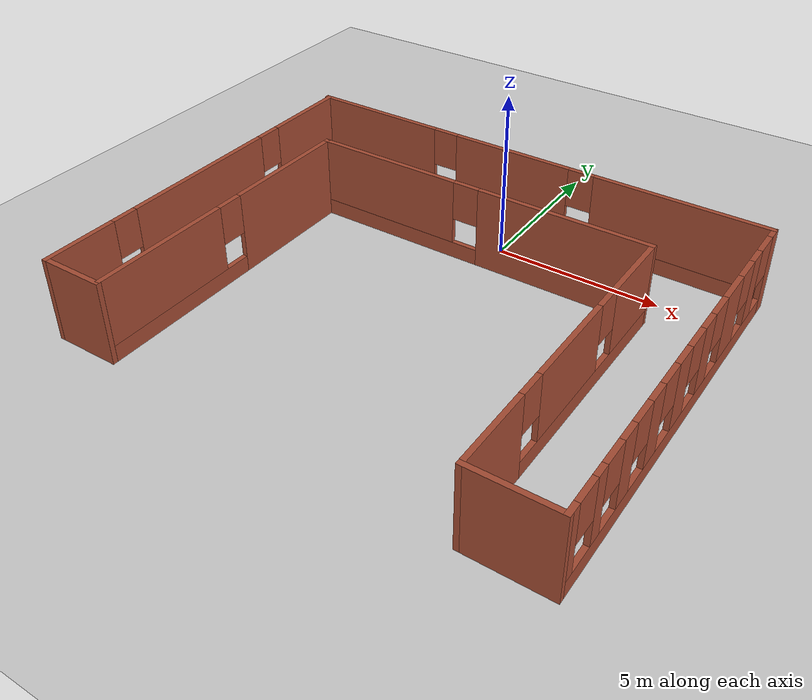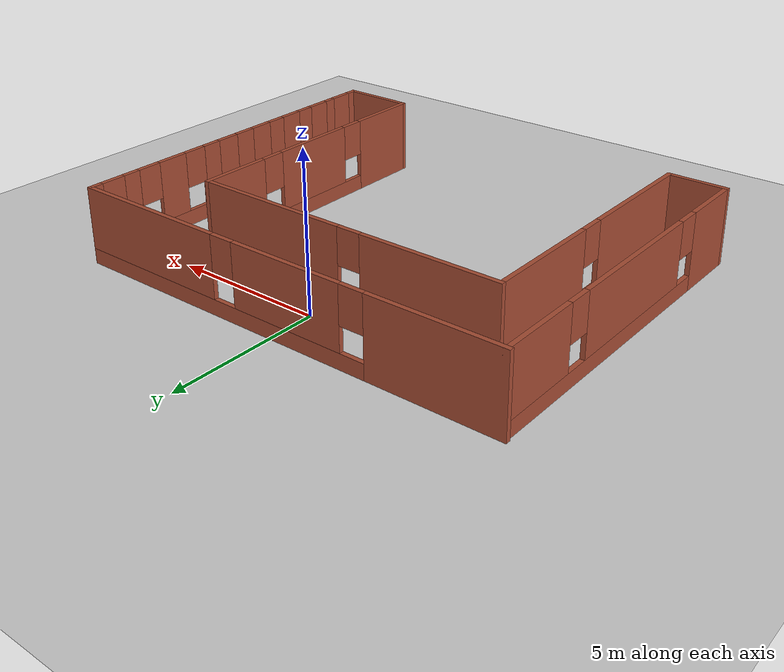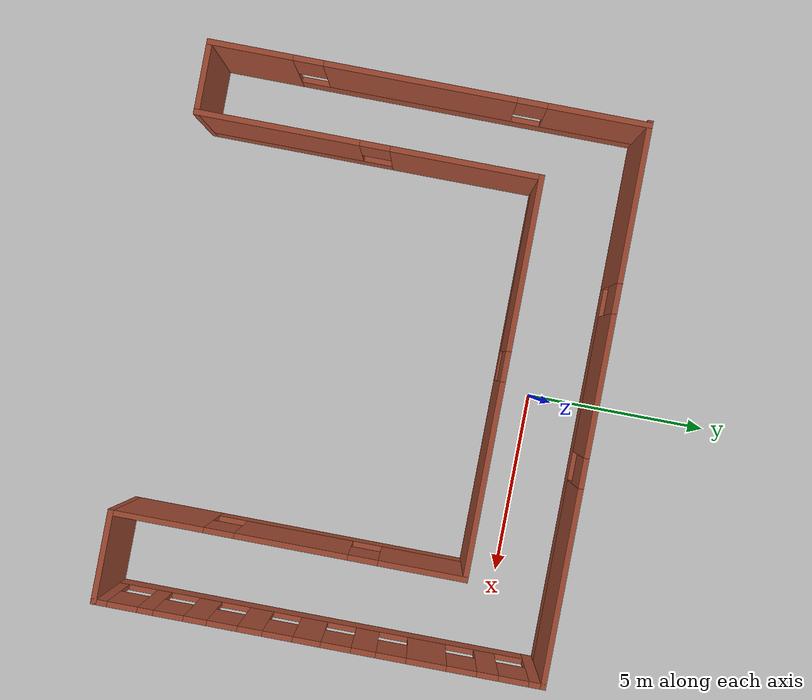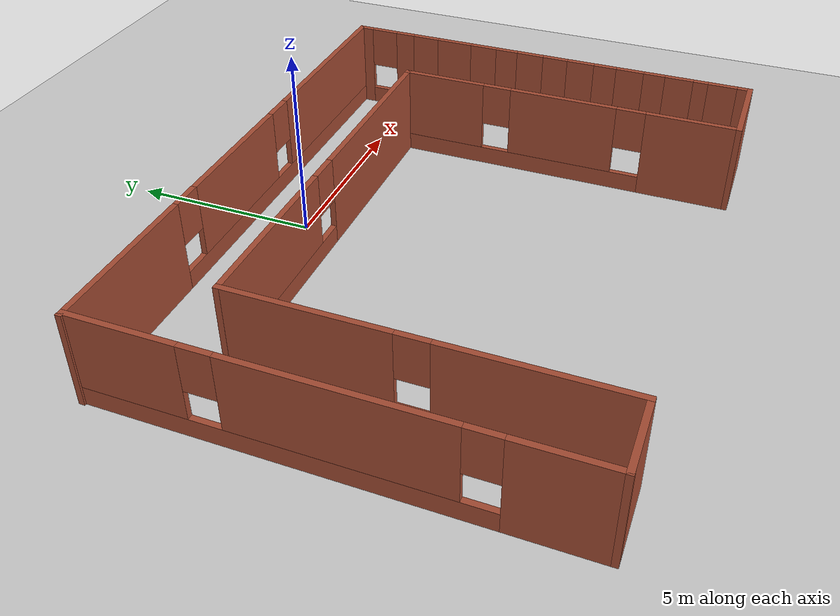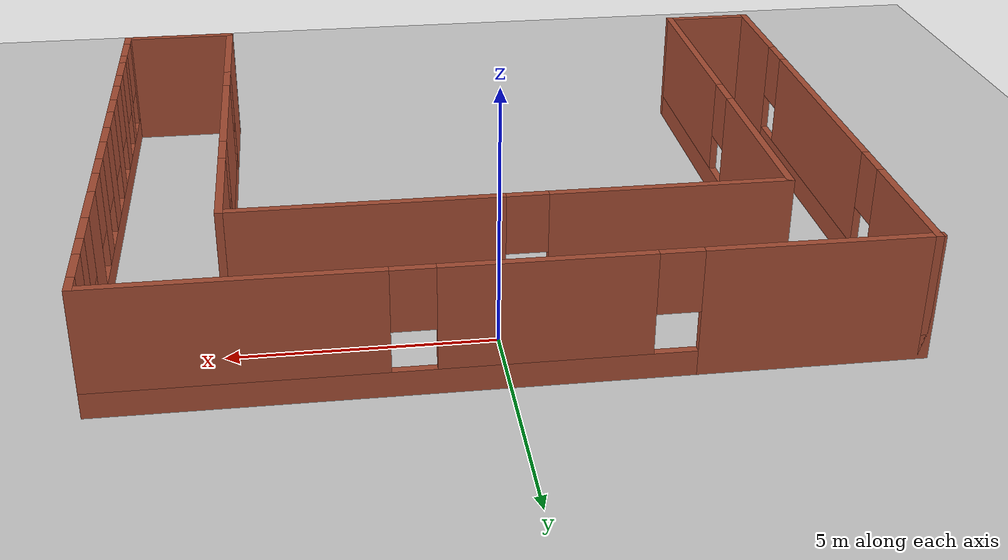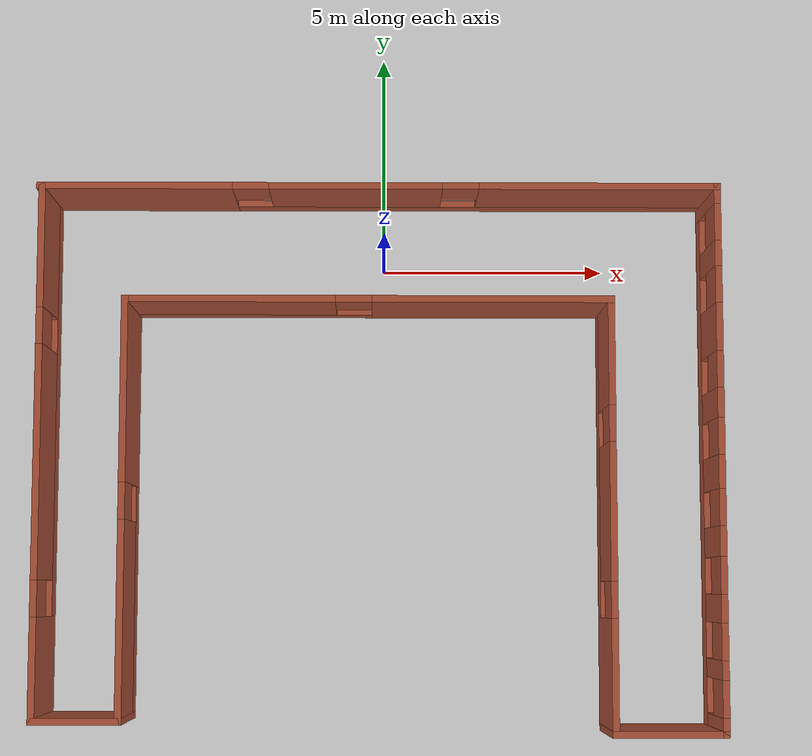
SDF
<sdf version="1.6">
 <world name="default">
  <light name="sun" type="directional">
   <pose>0 0 10 0 -0 0</pose>
   <diffuse>0.8 0.8 0.8 1</diffuse>
   <specular>0.2 0.2 0.2 1</specular>
   <attenuation>
    <range>1000</range>
    <constant>0.9</constant>
    <linear>0.01</linear>
    <quadratic>0.001</quadratic>
   </attenuation>
   <direction>-0.5 0.1 -0.9</direction>
  </light>
  <model name="ground_plane">
   <static>1</static>
   <link name="link">
    <collision name="collision">
     <geometry><plane><normal>0 0 1</normal><size>100 100</size></plane></geometry>
     <surface><friction><ode><mu>100</mu><mu2>50</mu2></ode></friction></surface>
    </collision>
    <visual name="visual">
     <cast_shadows>0</cast_shadows>
     <geometry><plane><normal>0 0 1</normal><size>100 100</size></plane></geometry>
     <material>
      <script><uri>file://media/materials/scripts/gazebo.material</uri><name>Gazebo/Grey</name></script>
     </material>
    </visual>
   </link>
  </model>
  <gravity>0 0 -9.8</gravity>
  <magnetic_field>6e-06 2.3e-05 -4.2e-05</magnetic_field>
  <atmosphere type="adiabatic"/>
  <physics name="default_physics" default="0" type="ode">
   <max_step_size>0.001</max_step_size>
   <real_time_factor>1</real_time_factor>
   <real_time_update_rate>1000</real_time_update_rate>
  </physics>
  <scene><ambient>0.4 0.4 0.4 1</ambient><background>0.7 0.7 0.7 1</background><shadows>1</shadows></scene>
  <spherical_coordinates>
   <surface_model>EARTH_WGS84</surface_model>
   <latitude_deg>0</latitude_deg>
   <longitude_deg>0</longitude_deg>
   <elevation>0</elevation>
   <heading_deg>0</heading_deg>
  </spherical_coordinates>
  <model name="hallway">
   <pose>-0.123809 -4.39665 0 0 -0 0</pose>
   <link name="Wall_10">
    <pose>-7.375 0.125 0 0 -0 1.5708</pose>
    <visual name="Wall_10_Visual_0">
     <pose>-4.73624 0 1.25 0 -0 0</pose>
     <geometry><box><size>2.27752 0.15 2.5</size></box></geometry>
     <material>
      <script><uri>file://media/materials/scripts/gazebo.material</uri><name>Gazebo/Bricks</name></script>
      <ambient>1 1 1 1</ambient>
     </material>
     <meta><layer>0</layer></meta>
    </visual>
    <collision name="Wall_10_Collision_0">
     <geometry><box><size>2.27752 0.15 2.5</size></box></geometry>
     <pose>-4.73624 0 1.25 0 -0 0</pose>
    </collision>
    <visual name="Wall_10_Visual_1">
     <pose>1.13876 0 0.25 0 -0 0</pose>
     <geometry><box><size>9.47248 0.15 0.5</size></box></geometry>
     <material>
      <script><uri>file://media/materials/scripts/gazebo.material</uri><name>Gazebo/Bricks</name></script>
      <ambient>1 1 1 1</ambient>
     </material>
     <meta><layer>0</layer></meta>
    </visual>
    <collision name="Wall_10_Collision_1">
     <geometry><box><size>9.47248 0.15 0.5</size></box></geometry>
     <pose>1.13876 0 0.25 0 -0 0</pose>
    </collision>
    <visual name="Wall_10_Visual_2">
     <pose>-0.244219 0 1.5 0 -0 0</pose>
     <geometry><box><size>5.10651 0.15 2</size></box></geometry>
     <material>
      <script><uri>file://media/materials/scripts/gazebo.material</uri><name>Gazebo/Bricks</name></script>
      <ambient>1 1 1 1</ambient>
     </material>
     <meta><layer>0</layer></meta>
    </visual>
    <collision name="Wall_10_Collision_2">
     <geometry><box><size>5.10651 0.15 2</size></box></geometry>
     <pose>-0.244219 0 1.5 0 -0 0</pose>
    </collision>
    <visual name="Wall_10_Visual_3">
     <pose>4.49202 0 1.5 0 -0 0</pose>
     <geometry><box><size>2.76596 0.15 2</size></box></geometry>
     <material>
      <script><uri>file://media/materials/scripts/gazebo.material</uri><name>Gazebo/Bricks</name></script>
      <ambient>1 1 1 1</ambient>
     </material>
     <meta><layer>0</layer></meta>
    </visual>
    <collision name="Wall_10_Collision_3">
     <geometry><box><size>2.76596 0.15 2</size></box></geometry>
     <pose>4.49202 0 1.5 0 -0 0</pose>
    </collision>
    <visual name="Wall_10_Visual_4">
     <pose>-3.19748 0 1.9 0 -0 0</pose>
     <geometry><box><size>0.8 0.15 1.2</size></box></geometry>
     <material>
      <script><uri>file://media/materials/scripts/gazebo.material</uri><name>Gazebo/Bricks</name></script>
      <ambient>1 1 1 1</ambient>
     </material>
     <meta><layer>0</layer></meta>
    </visual>
    <collision name="Wall_10_Collision_4">
     <geometry><box><size>0.8 0.15 1.2</size></box></geometry>
     <pose>-3.19748 0 1.9 0 -0 0</pose>
    </collision>
    <visual name="Wall_10_Visual_5">
     <pose>2.70904 0 1.9 0 -0 0</pose>
     <geometry><box><size>0.8 0.15 1.2</size></box></geometry>
     <material>
      <script><uri>file://media/materials/scripts/gazebo.material</uri><name>Gazebo/Bricks</name></script>
      <ambient>1 1 1 1</ambient>
     </material>
     <meta><layer>0</layer></meta>
    </visual>
    <collision name="Wall_10_Collision_5">
     <geometry><box><size>0.8 0.15 1.2</size></box></geometry>
     <pose>2.70904 0 1.9 0 -0 0</pose>
    </collision>
   </link>
   <link name="Wall_3">
    <pose>0 5.925 0 0 -0 0</pose>
    <visual name="Wall_3_Visual_0">
     <pose>-5.35239 0 1.25 0 -0 0</pose>
     <geometry><box><size>4.29522 0.15 2.5</size></box></geometry>
     <material>
      <script><uri>file://media/materials/scripts/gazebo.material</uri><name>Gazebo/Bricks</name></script>
      <ambient>1 1 1 1</ambient>
     </material>
     <meta><layer>0</layer></meta>
    </visual>
    <collision name="Wall_3_Collision_0">
     <geometry><box><size>4.29522 0.15 2.5</size></box></geometry>
     <pose>-5.35239 0 1.25 0 -0 0</pose>
    </collision>
    <visual name="Wall_3_Visual_1">
     <pose>2.14761 0 0.25 0 -0 0</pose>
     <geometry><box><size>10.7048 0.15 0.5</size></box></geometry>
     <material>
      <script><uri>file://media/materials/scripts/gazebo.material</uri><name>Gazebo/Bricks</name></script>
      <ambient>1 1 1 1</ambient>
     </material>
     <meta><layer>0</layer></meta>
    </visual>
    <collision name="Wall_3_Collision_1">
     <geometry><box><size>10.7048 0.15 0.5</size></box></geometry>
     <pose>2.14761 0 0.25 0 -0 0</pose>
    </collision>
    <visual name="Wall_3_Visual_2">
     <pose>-0.498808 0 1.5 0 -0 0</pose>
     <geometry><box><size>3.81194 0.15 2</size></box></geometry>
     <material>
      <script><uri>file://media/materials/scripts/gazebo.material</uri><name>Gazebo/Bricks</name></script>
      <ambient>1 1 1 1</ambient>
     </material>
     <meta><layer>0</layer></meta>
    </visual>
    <collision name="Wall_3_Collision_2">
     <geometry><box><size>3.81194 0.15 2</size></box></geometry>
     <pose>-0.498808 0 1.5 0 -0 0</pose>
    </collision>
    <visual name="Wall_3_Visual_3">
     <pose>4.85358 0 1.5 0 -0 0</pose>
     <geometry><box><size>5.29284 0.15 2</size></box></geometry>
     <material>
      <script><uri>file://media/materials/scripts/gazebo.material</uri><name>Gazebo/Bricks</name></script>
      <ambient>1 1 1 1</ambient>
     </material>
     <meta><layer>0</layer></meta>
    </visual>
    <collision name="Wall_3_Collision_3">
     <geometry><box><size>5.29284 0.15 2</size></box></geometry>
     <pose>4.85358 0 1.5 0 -0 0</pose>
    </collision>
    <visual name="Wall_3_Visual_4">
     <pose>-2.80478 0 1.9 0 -0 0</pose>
     <geometry><box><size>0.8 0.15 1.2</size></box></geometry>
     <material>
      <script><uri>file://media/materials/scripts/gazebo.material</uri><name>Gazebo/Bricks</name></script>
      <ambient>1 1 1 1</ambient>
     </material>
     <meta><layer>0</layer></meta>
    </visual>
    <collision name="Wall_3_Collision_4">
     <geometry><box><size>0.8 0.15 1.2</size></box></geometry>
     <pose>-2.80478 0 1.9 0 -0 0</pose>
    </collision>
    <visual name="Wall_3_Visual_5">
     <pose>1.80716 0 1.9 0 -0 0</pose>
     <geometry><box><size>0.8 0.15 1.2</size></box></geometry>
     <material>
      <script><uri>file://media/materials/scripts/gazebo.material</uri><name>Gazebo/Bricks</name></script>
      <ambient>1 1 1 1</ambient>
     </material>
     <meta><layer>0</layer></meta>
    </visual>
    <collision name="Wall_3_Collision_5">
     <geometry><box><size>0.8 0.15 1.2</size></box></geometry>
     <pose>1.80716 0 1.9 0 -0 0</pose>
    </collision>
   </link>
   <link name="Wall_4">
    <pose>7.425 0 0 0 0 -1.5708</pose>
    <visual name="Wall_4_Visual_0">
     <pose>-5.77 0 1.25 0 -0 0</pose>
     <geometry><box><size>0.459994 0.15 2.5</size></box></geometry>
     <material>
      <script><uri>file://media/materials/scripts/gazebo.material</uri><name>Gazebo/Bricks</name></script>
      <ambient>1 1 1 1</ambient>
     </material>
     <meta><layer>0</layer></meta>
    </visual>
    <collision name="Wall_4_Collision_0">
     <geometry><box><size>0.459994 0.15 2.5</size></box></geometry>
     <pose>-5.77 0 1.25 0 -0 0</pose>
    </collision>
    <visual name="Wall_4_Visual_1">
     <pose>0.229997 0 0.25 0 -0 0</pose>
     <geometry><box><size>11.54 0.15 0.5</size></box></geometry>
     <material>
      <script><uri>file://media/materials/scripts/gazebo.material</uri><name>Gazebo/Bricks</name></script>
      <ambient>1 1 1 1</ambient>
     </material>
     <meta><layer>0</layer></meta>
    </visual>
    <collision name="Wall_4_Collision_1">
     <geometry><box><size>11.54 0.15 0.5</size></box></geometry>
     <pose>0.229997 0 0.25 0 -0 0</pose>
    </collision>
    <visual name="Wall_4_Visual_2">
     <pose>-4.45226 0 1.5 0 -0 0</pose>
     <geometry><box><size>0.57549 0.15 2</size></box></geometry>
     <material>
      <script><uri>file://media/materials/scripts/gazebo.material</uri><name>Gazebo/Bricks</name></script>
      <ambient>1 1 1 1</ambient>
     </material>
     <meta><layer>0</layer></meta>
    </visual>
    <collision name="Wall_4_Collision_2">
     <geometry><box><size>0.57549 0.15 2</size></box></geometry>
     <pose>-4.45226 0 1.5 0 -0 0</pose>
    </collision>
    <visual name="Wall_4_Visual_3">
     <pose>-2.83404 0 1.5 0 -0 0</pose>
     <geometry><box><size>1.06096 0.15 2</size></box></geometry>
     <material>
      <script><uri>file://media/materials/scripts/gazebo.material</uri><name>Gazebo/Bricks</name></script>
      <ambient>1 1 1 1</ambient>
     </material>
     <meta><layer>0</layer></meta>
    </visual>
    <collision name="Wall_4_Collision_3">
     <geometry><box><size>1.06096 0.15 2</size></box></geometry>
     <pose>-2.83404 0 1.5 0 -0 0</pose>
    </collision>
    <visual name="Wall_4_Visual_4">
     <pose>-1.17536 0 1.5 0 -0 0</pose>
     <geometry><box><size>0.656401 0.15 2</size></box></geometry>
     <material>
      <script><uri>file://media/materials/scripts/gazebo.material</uri><name>Gazebo/Bricks</name></script>
      <ambient>1 1 1 1</ambient>
     </material>
     <meta><layer>0</layer></meta>
    </visual>
    <collision name="Wall_4_Collision_4">
     <geometry><box><size>0.656401 0.15 2</size></box></geometry>
     <pose>-1.17536 0 1.5 0 -0 0</pose>
    </collision>
    <visual name="Wall_4_Visual_5">
     <pose>0.320065 0 1.5 0 -0 0</pose>
     <geometry><box><size>0.734448 0.15 2</size></box></geometry>
     <material>
      <script><uri>file://media/materials/scripts/gazebo.material</uri><name>Gazebo/Bricks</name></script>
      <ambient>1 1 1 1</ambient>
     </material>
     <meta><layer>0</layer></meta>
    </visual>
    <collision name="Wall_4_Collision_5">
     <geometry><box><size>0.734448 0.15 2</size></box></geometry>
     <pose>0.320065 0 1.5 0 -0 0</pose>
    </collision>
    <visual name="Wall_4_Visual_6">
     <pose>1.81692 0 1.5 0 -0 0</pose>
     <geometry><box><size>0.659265 0.15 2</size></box></geometry>
     <material>
      <script><uri>file://media/materials/scripts/gazebo.material</uri><name>Gazebo/Bricks</name></script>
      <ambient>1 1 1 1</ambient>
     </material>
     <meta><layer>0</layer></meta>
    </visual>
    <collision name="Wall_4_Collision_6">
     <geometry><box><size>0.659265 0.15 2</size></box></geometry>
     <pose>1.81692 0 1.5 0 -0 0</pose>
    </collision>
    <visual name="Wall_4_Visual_7">
     <pose>3.25453 0 1.5 0 -0 0</pose>
     <geometry><box><size>0.615945 0.15 2</size></box></geometry>
     <material>
      <script><uri>file://media/materials/scripts/gazebo.material</uri><name>Gazebo/Bricks</name></script>
      <ambient>1 1 1 1</ambient>
     </material>
     <meta><layer>0</layer></meta>
    </visual>
    <collision name="Wall_4_Collision_7">
     <geometry><box><size>0.615945 0.15 2</size></box></geometry>
     <pose>3.25453 0 1.5 0 -0 0</pose>
    </collision>
    <visual name="Wall_4_Visual_8">
     <pose>4.56933 0 1.5 0 -0 0</pose>
     <geometry><box><size>0.413667 0.15 2</size></box></geometry>
     <material>
      <script><uri>file://media/materials/scripts/gazebo.material</uri><name>Gazebo/Bricks</name></script>
      <ambient>1 1 1 1</ambient>
     </material>
     <meta><layer>0</layer></meta>
    </visual>
    <collision name="Wall_4_Collision_8">
     <geometry><box><size>0.413667 0.15 2</size></box></geometry>
     <pose>4.56933 0 1.5 0 -0 0</pose>
    </collision>
    <visual name="Wall_4_Visual_9">
     <pose>5.78808 0 1.5 0 -0 0</pose>
     <geometry><box><size>0.423834 0.15 2</size></box></geometry>
     <material>
      <script><uri>file://media/materials/scripts/gazebo.material</uri><name>Gazebo/Bricks</name></script>
      <ambient>1 1 1 1</ambient>
     </material>
     <meta><layer>0</layer></meta>
    </visual>
    <collision name="Wall_4_Collision_9">
     <geometry><box><size>0.423834 0.15 2</size></box></geometry>
     <pose>5.78808 0 1.5 0 -0 0</pose>
    </collision>
    <visual name="Wall_4_Visual_10">
     <pose>-5.14001 0 1.9 0 -0 0</pose>
     <geometry><box><size>0.8 0.15 1.2</size></box></geometry>
     <material>
      <script><uri>file://media/materials/scripts/gazebo.material</uri><name>Gazebo/Bricks</name></script>
      <ambient>1 1 1 1</ambient>
     </material>
     <meta><layer>0</layer></meta>
    </visual>
    <collision name="Wall_4_Collision_10">
     <geometry><box><size>0.8 0.15 1.2</size></box></geometry>
     <pose>-5.14001 0 1.9 0 -0 0</pose>
    </collision>
    <visual name="Wall_4_Visual_11">
     <pose>-3.76452 0 1.9 0 -0 0</pose>
     <geometry><box><size>0.8 0.15 1.2</size></box></geometry>
     <material>
      <script><uri>file://media/materials/scripts/gazebo.material</uri><name>Gazebo/Bricks</name></script>
      <ambient>1 1 1 1</ambient>
     </material>
     <meta><layer>0</layer></meta>
    </visual>
    <collision name="Wall_4_Collision_11">
     <geometry><box><size>0.8 0.15 1.2</size></box></geometry>
     <pose>-3.76452 0 1.9 0 -0 0</pose>
    </collision>
    <visual name="Wall_4_Visual_12">
     <pose>-1.90356 0 1.9 0 -0 0</pose>
     <geometry><box><size>0.8 0.15 1.2</size></box></geometry>
     <material>
      <script><uri>file://media/materials/scripts/gazebo.material</uri><name>Gazebo/Bricks</name></script>
      <ambient>1 1 1 1</ambient>
     </material>
     <meta><layer>0</layer></meta>
    </visual>
    <collision name="Wall_4_Collision_12">
     <geometry><box><size>0.8 0.15 1.2</size></box></geometry>
     <pose>-1.90356 0 1.9 0 -0 0</pose>
    </collision>
    <visual name="Wall_4_Visual_13">
     <pose>-0.447159 0 1.9 0 -0 0</pose>
     <geometry><box><size>0.8 0.15 1.2</size></box></geometry>
     <material>
      <script><uri>file://media/materials/scripts/gazebo.material</uri><name>Gazebo/Bricks</name></script>
      <ambient>1 1 1 1</ambient>
     </material>
     <meta><layer>0</layer></meta>
    </visual>
    <collision name="Wall_4_Collision_13">
     <geometry><box><size>0.8 0.15 1.2</size></box></geometry>
     <pose>-0.447159 0 1.9 0 -0 0</pose>
    </collision>
    <visual name="Wall_4_Visual_14">
     <pose>1.08729 0 1.9 0 -0 0</pose>
     <geometry><box><size>0.8 0.15 1.2</size></box></geometry>
     <material>
      <script><uri>file://media/materials/scripts/gazebo.material</uri><name>Gazebo/Bricks</name></script>
      <ambient>1 1 1 1</ambient>
     </material>
     <meta><layer>0</layer></meta>
    </visual>
    <collision name="Wall_4_Collision_14">
     <geometry><box><size>0.8 0.15 1.2</size></box></geometry>
     <pose>1.08729 0 1.9 0 -0 0</pose>
    </collision>
    <visual name="Wall_4_Visual_15">
     <pose>2.54655 0 1.9 0 -0 0</pose>
     <geometry><box><size>0.8 0.15 1.2</size></box></geometry>
     <material>
      <script><uri>file://media/materials/scripts/gazebo.material</uri><name>Gazebo/Bricks</name></script>
      <ambient>1 1 1 1</ambient>
     </material>
     <meta><layer>0</layer></meta>
    </visual>
    <collision name="Wall_4_Collision_15">
     <geometry><box><size>0.8 0.15 1.2</size></box></geometry>
     <pose>2.54655 0 1.9 0 -0 0</pose>
    </collision>
    <visual name="Wall_4_Visual_16">
     <pose>3.9625 0 1.9 0 -0 0</pose>
     <geometry><box><size>0.8 0.15 1.2</size></box></geometry>
     <material>
      <script><uri>file://media/materials/scripts/gazebo.material</uri><name>Gazebo/Bricks</name></script>
      <ambient>1 1 1 1</ambient>
     </material>
     <meta><layer>0</layer></meta>
    </visual>
    <collision name="Wall_4_Collision_16">
     <geometry><box><size>0.8 0.15 1.2</size></box></geometry>
     <pose>3.9625 0 1.9 0 -0 0</pose>
    </collision>
    <visual name="Wall_4_Visual_17">
     <pose>5.17617 0 1.9 0 -0 0</pose>
     <geometry><box><size>0.8 0.15 1.2</size></box></geometry>
     <material>
      <script><uri>file://media/materials/scripts/gazebo.material</uri><name>Gazebo/Bricks</name></script>
      <ambient>1 1 1 1</ambient>
     </material>
     <meta><layer>0</layer></meta>
    </visual>
    <collision name="Wall_4_Collision_17">
     <geometry><box><size>0.8 0.15 1.2</size></box></geometry>
     <pose>5.17617 0 1.9 0 -0 0</pose>
    </collision>
   </link>
   <link name="Wall_5">
    <collision name="Wall_5_Collision">
     <geometry><box><size>2.5 0.15 2.5</size></box></geometry>
     <pose>0 0 1.25 0 -0 0</pose>
    </collision>
    <visual name="Wall_5_Visual">
     <pose>0 0 1.25 0 -0 0</pose>
     <geometry><box><size>2.5 0.15 2.5</size></box></geometry>
     <material>
      <script><uri>file://media/materials/scripts/gazebo.material</uri><name>Gazebo/Bricks</name></script>
      <ambient>1 1 1 1</ambient>
     </material>
     <meta><layer>0</layer></meta>
    </visual>
    <pose>6.25 -5.925 0 0 -0 3.14159</pose>
   </link>
   <link name="Wall_6">
    <pose>5.075 -1.25 0 0 -0 1.5708</pose>
    <visual name="Wall_6_Visual_0">
     <pose>-3.48783 0 1.25 0 -0 0</pose>
     <geometry><box><size>2.52435 0.15 2.5</size></box></geometry>
     <material>
      <script><uri>file://media/materials/scripts/gazebo.material</uri><name>Gazebo/Bricks</name></script>
      <ambient>1 1 1 1</ambient>
     </material>
     <meta><layer>0</layer></meta>
    </visual>
    <collision name="Wall_6_Collision_0">
     <geometry><box><size>2.52435 0.15 2.5</size></box></geometry>
     <pose>-3.48783 0 1.25 0 -0 0</pose>
    </collision>
    <visual name="Wall_6_Visual_1">
     <pose>1.26217 0 0.25 0 -0 0</pose>
     <geometry><box><size>6.97565 0.15 0.5</size></box></geometry>
     <material>
      <script><uri>file://media/materials/scripts/gazebo.material</uri><name>Gazebo/Bricks</name></script>
      <ambient>1 1 1 1</ambient>
     </material>
     <meta><layer>0</layer></meta>
    </visual>
    <collision name="Wall_6_Collision_1">
     <geometry><box><size>6.97565 0.15 0.5</size></box></geometry>
     <pose>1.26217 0 0.25 0 -0 0</pose>
    </collision>
    <visual name="Wall_6_Visual_2">
     <pose>0.07094 0 1.5 0 -0 0</pose>
     <geometry><box><size>2.99319 0.15 2</size></box></geometry>
     <material>
      <script><uri>file://media/materials/scripts/gazebo.material</uri><name>Gazebo/Bricks</name></script>
      <ambient>1 1 1 1</ambient>
     </material>
     <meta><layer>0</layer></meta>
    </visual>
    <collision name="Wall_6_Collision_2">
     <geometry><box><size>2.99319 0.15 2</size></box></geometry>
     <pose>0.07094 0 1.5 0 -0 0</pose>
    </collision>
    <visual name="Wall_6_Visual_3">
     <pose>3.55877 0 1.5 0 -0 0</pose>
     <geometry><box><size>2.38247 0.15 2</size></box></geometry>
     <material>
      <script><uri>file://media/materials/scripts/gazebo.material</uri><name>Gazebo/Bricks</name></script>
      <ambient>1 1 1 1</ambient>
     </material>
     <meta><layer>0</layer></meta>
    </visual>
    <collision name="Wall_6_Collision_3">
     <geometry><box><size>2.38247 0.15 2</size></box></geometry>
     <pose>3.55877 0 1.5 0 -0 0</pose>
    </collision>
    <visual name="Wall_6_Visual_4">
     <pose>-1.82565 0 1.9 0 -0 0</pose>
     <geometry><box><size>0.8 0.15 1.2</size></box></geometry>
     <material>
      <script><uri>file://media/materials/scripts/gazebo.material</uri><name>Gazebo/Bricks</name></script>
      <ambient>1 1 1 1</ambient>
     </material>
     <meta><layer>0</layer></meta>
    </visual>
    <collision name="Wall_6_Collision_4">
     <geometry><box><size>0.8 0.15 1.2</size></box></geometry>
     <pose>-1.82565 0 1.9 0 -0 0</pose>
    </collision>
    <visual name="Wall_6_Visual_5">
     <pose>1.96753 0 1.9 0 -0 0</pose>
     <geometry><box><size>0.8 0.15 1.2</size></box></geometry>
     <material>
      <script><uri>file://media/materials/scripts/gazebo.material</uri><name>Gazebo/Bricks</name></script>
      <ambient>1 1 1 1</ambient>
     </material>
     <meta><layer>0</layer></meta>
    </visual>
    <collision name="Wall_6_Collision_5">
     <geometry><box><size>0.8 0.15 1.2</size></box></geometry>
     <pose>1.96753 0 1.9 0 -0 0</pose>
    </collision>
   </link>
   <link name="Wall_7">
    <pose>-0.225 3.425 0 0 -0 3.14159</pose>
    <visual name="Wall_7_Visual_0">
     <pose>-2.73037 0 1.25 0 -0 0</pose>
     <geometry><box><size>5.28926 0.15 2.5</size></box></geometry>
     <material>
      <script><uri>file://media/materials/scripts/gazebo.material</uri><name>Gazebo/Bricks</name></script>
      <ambient>1 1 1 1</ambient>
     </material>
     <meta><layer>0</layer></meta>
    </visual>
    <collision name="Wall_7_Collision_0">
     <geometry><box><size>5.28926 0.15 2.5</size></box></geometry>
     <pose>-2.73037 0 1.25 0 -0 0</pose>
    </collision>
    <visual name="Wall_7_Visual_1">
     <pose>2.64463 0 0.25 0 -0 0</pose>
     <geometry><box><size>5.46074 0.15 0.5</size></box></geometry>
     <material>
      <script><uri>file://media/materials/scripts/gazebo.material</uri><name>Gazebo/Bricks</name></script>
      <ambient>1 1 1 1</ambient>
     </material>
     <meta><layer>0</layer></meta>
    </visual>
    <collision name="Wall_7_Collision_1">
     <geometry><box><size>5.46074 0.15 0.5</size></box></geometry>
     <pose>2.64463 0 0.25 0 -0 0</pose>
    </collision>
    <visual name="Wall_7_Visual_2">
     <pose>3.04463 0 1.5 0 -0 0</pose>
     <geometry><box><size>4.66074 0.15 2</size></box></geometry>
     <material>
      <script><uri>file://media/materials/scripts/gazebo.material</uri><name>Gazebo/Bricks</name></script>
      <ambient>1 1 1 1</ambient>
     </material>
     <meta><layer>0</layer></meta>
    </visual>
    <collision name="Wall_7_Collision_2">
     <geometry><box><size>4.66074 0.15 2</size></box></geometry>
     <pose>3.04463 0 1.5 0 -0 0</pose>
    </collision>
    <visual name="Wall_7_Visual_3">
     <pose>0.314264 0 1.9 0 -0 0</pose>
     <geometry><box><size>0.8 0.15 1.2</size></box></geometry>
     <material>
      <script><uri>file://media/materials/scripts/gazebo.material</uri><name>Gazebo/Bricks</name></script>
      <ambient>1 1 1 1</ambient>
     </material>
     <meta><layer>0</layer></meta>
    </visual>
    <collision name="Wall_7_Collision_3">
     <geometry><box><size>0.8 0.15 1.2</size></box></geometry>
     <pose>0.314264 0 1.9 0 -0 0</pose>
    </collision>
   </link>
   <link name="Wall_8">
    <pose>-5.525 -1.125 0 0 0 -1.5708</pose>
    <visual name="Wall_8_Visual_0">
     <pose>-2.59061 0 1.25 0 -0 0</pose>
     <geometry><box><size>4.06879 0.15 2.5</size></box></geometry>
     <material>
      <script><uri>file://media/materials/scripts/gazebo.material</uri><name>Gazebo/Bricks</name></script>
      <ambient>1 1 1 1</ambient>
     </material>
     <meta><layer>0</layer></meta>
    </visual>
    <collision name="Wall_8_Collision_0">
     <geometry><box><size>4.06879 0.15 2.5</size></box></geometry>
     <pose>-2.59061 0 1.25 0 -0 0</pose>
    </collision>
    <visual name="Wall_8_Visual_1">
     <pose>2.03439 0 0.25 0 -0 0</pose>
     <geometry><box><size>5.18121 0.15 0.5</size></box></geometry>
     <material>
      <script><uri>file://media/materials/scripts/gazebo.material</uri><name>Gazebo/Bricks</name></script>
      <ambient>1 1 1 1</ambient>
     </material>
     <meta><layer>0</layer></meta>
    </visual>
    <collision name="Wall_8_Collision_1">
     <geometry><box><size>5.18121 0.15 0.5</size></box></geometry>
     <pose>2.03439 0 0.25 0 -0 0</pose>
    </collision>
    <visual name="Wall_8_Visual_2">
     <pose>2.43439 0 1.5 0 -0 0</pose>
     <geometry><box><size>4.38121 0.15 2</size></box></geometry>
     <material>
      <script><uri>file://media/materials/scripts/gazebo.material</uri><name>Gazebo/Bricks</name></script>
      <ambient>1 1 1 1</ambient>
     </material>
     <meta><layer>0</layer></meta>
    </visual>
    <collision name="Wall_8_Collision_2">
     <geometry><box><size>4.38121 0.15 2</size></box></geometry>
     <pose>2.43439 0 1.5 0 -0 0</pose>
    </collision>
    <visual name="Wall_8_Visual_3">
     <pose>-0.156214 0 1.9 0 -0 0</pose>
     <geometry><box><size>0.8 0.15 1.2</size></box></geometry>
     <material>
      <script><uri>file://media/materials/scripts/gazebo.material</uri><name>Gazebo/Bricks</name></script>
      <ambient>1 1 1 1</ambient>
     </material>
     <meta><layer>0</layer></meta>
    </visual>
    <collision name="Wall_8_Collision_3">
     <geometry><box><size>0.8 0.15 1.2</size></box></geometry>
     <pose>-0.156214 0 1.9 0 -0 0</pose>
    </collision>
   </link>
   <link name="Wall_9">
    <collision name="Wall_9_Collision">
     <geometry><box><size>2 0.15 2.5</size></box></geometry>
     <pose>0 0 1.25 0 -0 0</pose>
    </collision>
    <visual name="Wall_9_Visual">
     <pose>0 0 1.25 0 -0 0</pose>
     <geometry><box><size>2 0.15 2.5</size></box></geometry>
     <material>
      <script><uri>file://media/materials/scripts/gazebo.material</uri><name>Gazebo/Bricks</name></script>
      <ambient>1 1 1 1</ambient>
     </material>
     <meta><layer>0</layer></meta>
    </visual>
    <pose>-6.45 -5.675 0 0 -0 3.14159</pose>
   </link>
   <static>1</static>
  </model>
 </world>
</sdf>
